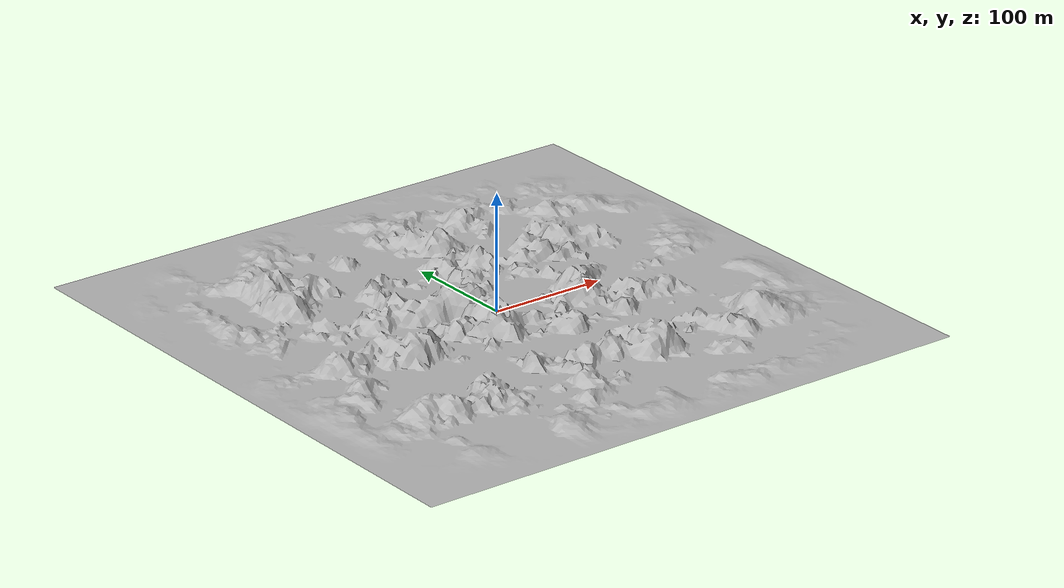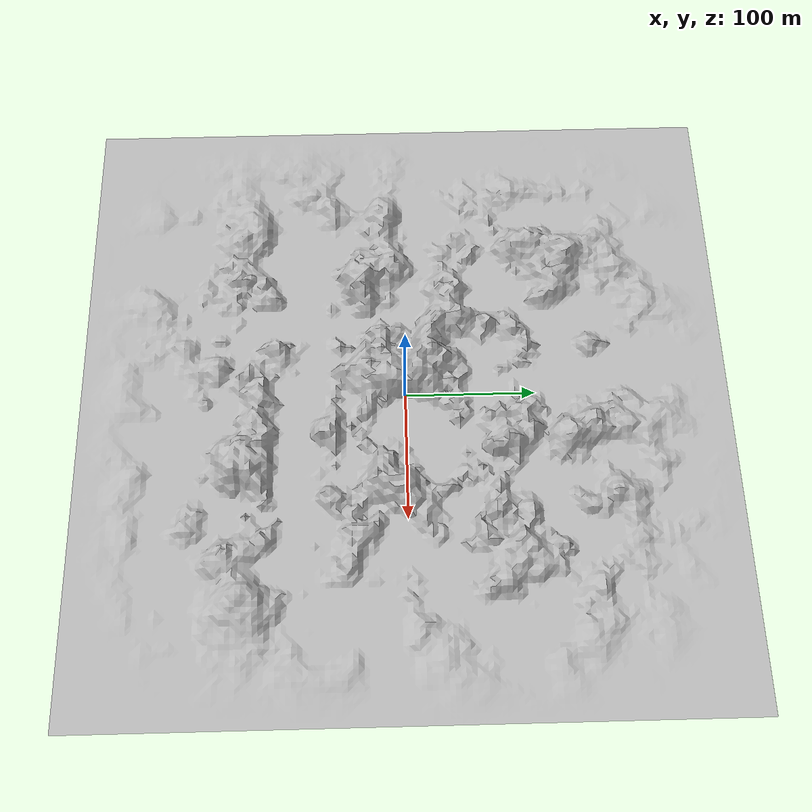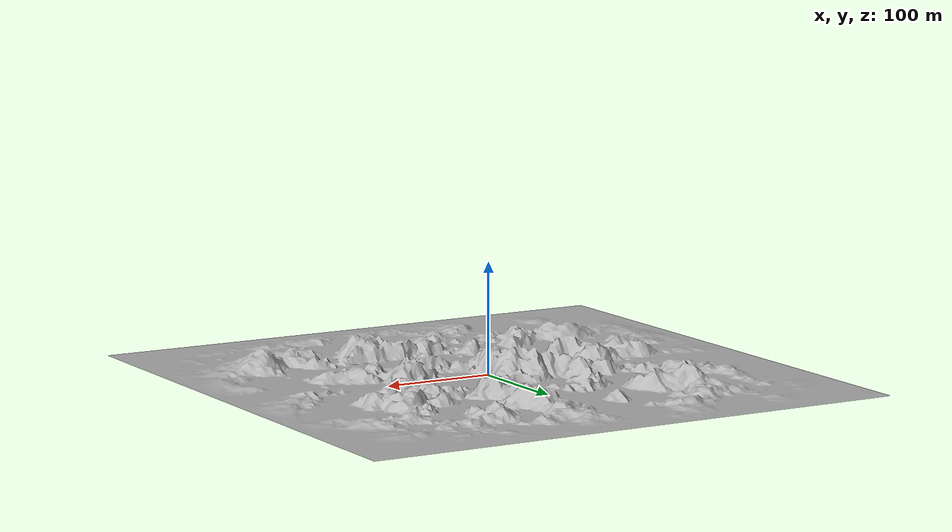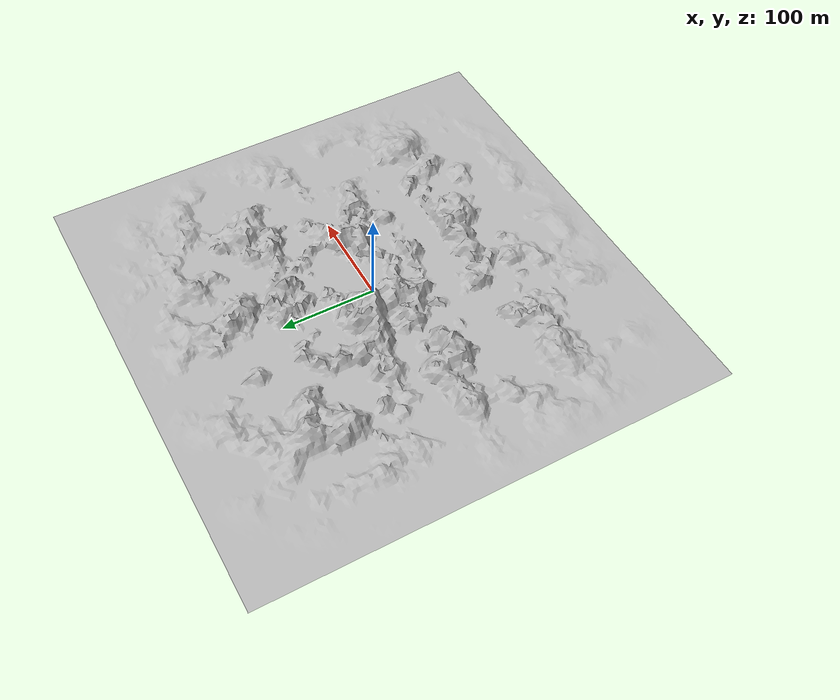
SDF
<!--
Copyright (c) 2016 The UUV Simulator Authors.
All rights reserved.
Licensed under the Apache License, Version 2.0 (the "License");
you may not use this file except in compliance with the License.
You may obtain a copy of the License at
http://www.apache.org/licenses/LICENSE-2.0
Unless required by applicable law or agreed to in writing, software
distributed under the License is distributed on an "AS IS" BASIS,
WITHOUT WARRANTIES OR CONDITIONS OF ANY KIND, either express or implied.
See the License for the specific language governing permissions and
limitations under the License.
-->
<?xml version="1.0" ?>
<sdf version="1.5">
  <model name="sand_heightmap">
    <static>true</static>
    <link name="link">
      <collision name="ground">
        <pose>0 0 0 0 0 0</pose>
        <geometry>
          <mesh><uri>model://sand_heightmap/meshes/heightmap.dae</uri></mesh>
        </geometry>
      </collision>

      <visual name="ground_sand">
        <cast_shadows>true</cast_shadows>
        <pose>0 0 0 0 0 0</pose>
        <geometry>
          <mesh><uri>model://sand_heightmap/meshes/heightmap.dae</uri></mesh>
        </geometry>
        <material>
          <script>
            <uri>file://../../Media/materials/scripts/sand.material</uri>
            <name>UUVSimulator/SandAndStones</name>
          </script>
          <emissive>
            0.6 0.6 0.6 1.0
          </emissive>
        </material>
      </visual>
    </link>
  </model>
</sdf>
